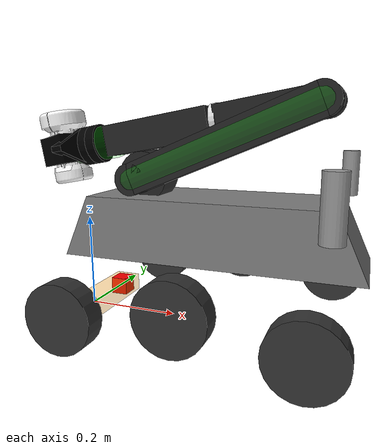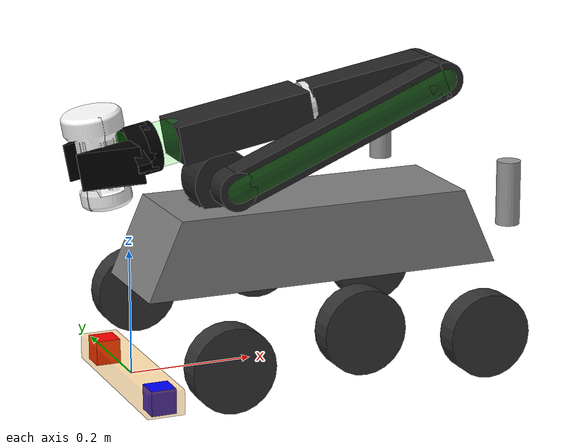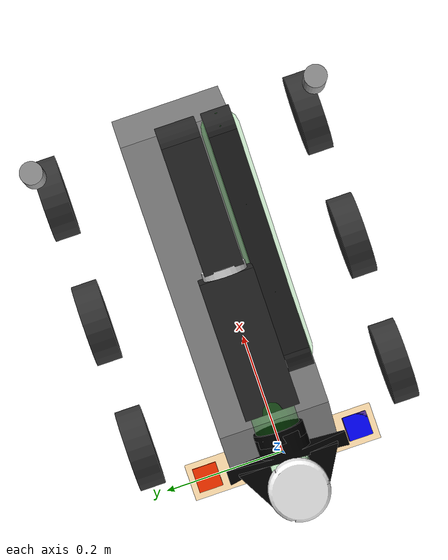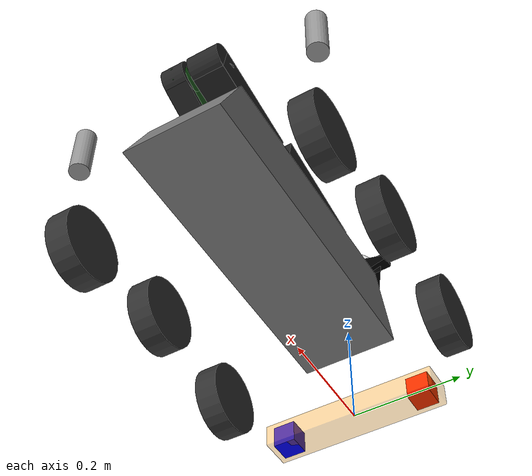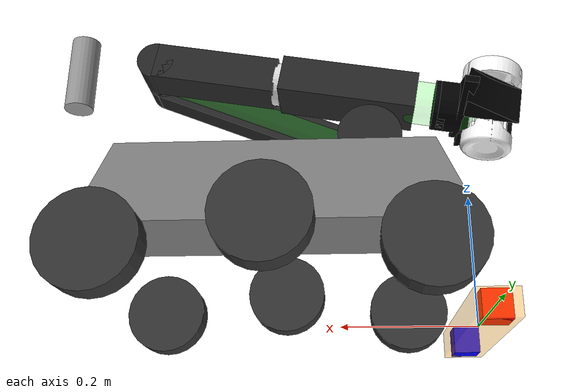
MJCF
<mujoco model="RM2026Arm">
  <compiler angle="radian" coordinate="local"/>

  <option gravity="0 0 -9.81"/>
  <option integrator="implicitfast" timestep="0.001"/>

  <asset>
    <material name="blue" rgba="0.2 0.6 0.8 1"/>
    <material name="grey" rgba="0.7 0.7 0.7 1"/>

    <mesh name="chassisbody" file="model/chassis/chassisbody.obj"/>
    <mesh name="energy_unit" file="model/field_assets/Energy_Unit.STL" />
    <mesh name="gripper_left" file="model/arm/gripper_asset/gripper_left.obj" scale="0.001 0.001 0.001"/>
    <mesh name="gripper_right" file="model/arm/gripper_asset/gripper_right.obj" scale="0.001 0.001 0.001"/>
    <mesh name="gripper_base" file="model/arm/gripper_asset/gripper_base.obj" scale="0.001 0.001 0.001"/>

  </asset>

  <worldbody>
    <light directional="true" diffuse=".8 .8 .8" specular=".2 .2 .2" pos="0 0 0" dir="0 0 -1"/>
  <body name="parallel_camera_mount" mocap="true">
    <geom name="parallel_camera_mount_geom" type="box" size="0.03 0.16 0.02"
          rgba="1 0.6 0 0.35" contype="0" conaffinity="0" mass="0"/>
    <body name="second_camera_left_mount" pos="0 0.13 0">
      <body name="second_camera_left_link">
        <joint name="second_camera_left_yaw" type="hinge" axis="0 0 -1" limited="false"/>
        <joint name="second_camera_left_pitch" type="hinge" axis="0 -1 0" limited="false"/>
        <geom name="camera_left_geom" type="box" size="0.02 0.02 0.02"
              rgba="1 0 0 1" contype="0" conaffinity="0" mass="0.001"/>
        <!-- Match square debug camera output: 640x640 with horizontal FOV 60deg -> vertical FOV 60deg. -->
        <camera name="second_camera" pos="0 0 0" quat="0.5 0.5 -0.5 -0.5" fovy="60"/>
      </body>
    </body>
    <body name="second_camera_right_mount" pos="0 -0.13 0">
      <body name="second_camera_right_link">
        <joint name="second_camera_right_yaw" type="hinge" axis="0 0 -1" limited="false"/>
        <joint name="second_camera_right_pitch" type="hinge" axis="0 -1 0" limited="false"/>
        <geom name="camera_right_geom" type="box" size="0.02 0.02 0.02"
              rgba="0 0 1 1" contype="0" conaffinity="0" mass="0.001"/>
        <camera name="second_camera2" pos="0 0 0" quat="0.5 0.5 -0.5 -0.5" fovy="60"/>
      </body>
    </body>
  </body>
  <body name="chassis" pos="0.15 0.0 0.3">
    <geom name="chassis_geom" type="mesh" mesh="chassisbody" pos="0.146 0 -0.16" rgba="0.5 0.5 0.5 1" mass="10"/>
    <!-- 轮子: 直径134mm, 宽42mm, 两侧轮心距435mm, 前后轴距428mm -->
    <geom name="wheel_fl" type="cylinder" size="0.067 0.021" pos="-0.068 -0.2175 -0.233" euler="1.5708 0 0" rgba="0.2 0.2 0.2 1" mass="0.5"/>
    <geom name="wheel_fr" type="cylinder" size="0.067 0.021" pos="-0.068 0.2175 -0.233" euler="1.5708 0 0" rgba="0.2 0.2 0.2 1" mass="0.5"/>
    <geom name="wheel_rl" type="cylinder" size="0.067 0.021" pos="0.360 -0.2175 -0.233" euler="1.5708 0 0" rgba="0.2 0.2 0.2 1" mass="0.5"/>
    <geom name="wheel_rr" type="cylinder" size="0.067 0.021" pos="0.360 0.2175 -0.233" euler="1.5708 0 0" rgba="0.2 0.2 0.2 1" mass="0.5"/>
    <!-- 中间悬空轮 -->
    <geom name="wheel_ml" type="cylinder" size="0.067 0.021" pos="0.146 -0.2175 -0.20" euler="1.5708 0 0" rgba="0.2 0.2 0.2 1" mass="0.5"/>
    <geom name="wheel_mr" type="cylinder" size="0.067 0.021" pos="0.146 0.2175 -0.20" euler="1.5708 0 0" rgba="0.2 0.2 0.2 1" mass="0.5"/>
    <!-- 臂座立柱：joint1坐标系下 (-388,±232,-4.25) mm → chassis坐标系，φ37×H100 mm -->
    <geom name="pillar_l" type="cylinder" size="0.0185 0.05" pos="0.388  0.232 -0.00425" rgba="0.6 0.6 0.6 1" mass="0.01"/>
    <geom name="pillar_r" type="cylinder" size="0.0185 0.05" pos="0.388 -0.232 -0.00425" rgba="0.6 0.6 0.6 1" mass="0.01"/>
    <joint name="chassis_x" type="slide" axis="1 0 0" range="-3 3" limited="false"/>
    <joint name="chassis_y" type="slide" axis="0 1 0" range="-3 3" limited="false"/>
    <joint name="chassis_yaw" type="hinge" axis="0 0 1" limited="false"/>

    <body name="link1" pos="0 0 0" euler="0 0 3.14159">
      <joint name="joint1" type="hinge" axis="0 0 1" range="-3.141592653589793 3.141592653589793" limited="true"/>
        <geom name="link1_geom1" type="box" size="0.04 0.0315 0.015" pos="0 0 -.051" rgba="0.149 0.149 0.149 1" mass="0.741" />
        <geom name="link1_geom2" type="cylinder" size="0.051 0.0315" pos="0 0 0" euler="1.5708 0 0" rgba="0.149 0.149 0.149 1" mass="0.351"/>

        <body name="link2" pos="0 0 0" euler="-1.5708 0 -2.7525588">
         <joint name="joint2" type="hinge" axis="0 0 1" range="0 2.2083" limited="true" />
            <!-- DH-aligned helper capsules for planning/debug; not tied to MuJoCo body semantics -->
            <geom name="cc_seg23" type="capsule" fromto="0 0 0.0643  0.38 0 0.0643"
                  size="0.03" rgba="0 1 0 0.10" contype="0" conaffinity="0" mass="0"/>
            <geom name="link2_geom1" type="cylinder" size="0.031 0.0225" pos="0 0 0.0643" euler="0 0 0" rgba="0.149 0.149 0.149 1"  mass="0.2"/>
            <geom name="link2_geom2" type="box" size="0.19 0.03 0.0225" pos="0.19 0 0.0643" rgba="0.149 0.149 0.149 1" mass="0.62"/>
            <geom name="link2_geom3" type="cylinder" size="0.03 0.0225" pos="0.38 0 0.0643" euler="0 0 0" rgba="0.149 0.149 0.149 1" mass="0.2"/>

            <body name="link3" pos="0.38 0 0" euler="-3.14159 0 1.7870426">
             <joint name="joint3" type="hinge" axis="0 0 1" range="0 2.3126" limited="true" />
                <geom name="cc_seg34" type="capsule" fromto="0 0 0  0 0.4345 0"
                      size="0.03" rgba="0 1 0 0.10" contype="0" conaffinity="0" mass="0"/>
                <geom name="link3_geom1" type="cylinder" size="0.0305 0.0313" pos="0 0 0" euler="0 0 0" rgba="0.149 0.149 0.149 1" mass="0.9"/>
                <geom name="link3_geom2" type="box" size="0.0305 0.102 0.0313" pos="0.0 0.102 0" euler="0 0 0" rgba="0.149 0.149 0.149 1" mass="0.8"/>
                <camera name="main_camera" pos="-0.02 0.03 0" quat="0.5 0.5 -0.5 0.5" fovy="80"/>
                    <body name="link4" pos="0 0.4345 0" euler="-1.5708 0 3.14159" >
                    <joint name="joint4" type="hinge" axis="0 0 1" limited="false"/>
                    <geom name="link4_geom1" type="box" size="0.0305  0.0433 0.1105" pos="0 0 -0.1105" euler="0 0 0" rgba="0.149 0.149 0.149 1" mass="1.2"/>
                    <geom name="link4_geom2" type="cylinder" size="0.035 0.006" pos="0 0 -0.227" euler="0 0 1.57" rgba="0.878 0.878 0.878 1" mass=".3"/>
                        <body name="link5" pos="0 0 0" euler="1.5708 0 0">
                        <joint name="joint5" type="hinge" axis="0 0 1"  range="-1.8326 1.8326" limited="true"/>
                        <geom name="link5_geom1" type="cylinder" size="0.0205 0.0025" pos="0 0 0.0458" euler="0 0 0" rgba="0.3 0.3 0.3 0" mass="0.3"/>
                        <geom name="link5_geom2" type="cylinder" size="0.0205 0.0025" pos="0 0 -0.0458" euler="0 0 0" rgba="0.3 0.3 0.3 0" mass="0.3"/>
                            <body name="link6" pos="0 0 0" euler="-1.5708 0 0">
                            <joint name="joint6" type="hinge" axis="0 0 1" limited="false"/>
                            <inertial pos="0 0 0.072" mass="1.0" diaginertia="0.005 0.005 0.005"/>

                            <geom name="cc_wrist_tcp" type="capsule" fromto="0 0 0  0 0 0.10"
                                  size="0.035" rgba="0 1 0 0.10" contype="0" conaffinity="0" mass="0"/>
                            <geom name="link6_geom2" type="cylinder" size="0.04 0.01" pos= "0 0 0.04" euler="0 0 0" rgba="0 0 0 1" mass="0.001"/>
                            <geom name="gripper_base" type="mesh" mesh="gripper_base" pos="0 0 0.077" euler="1.5708 0 0" rgba="0 0 0 1" mass="0.5" />
                              <body name="gripper" pos="0 0 0.077">
                                <geom name="gripper_left" type="mesh" mesh="gripper_left" pos="0 -0.03 0" euler="1.5708 0 0" rgba="0 0 0 1" mass="0.15"/>
                              </body>
                              <body name="gripper_left_body" pos="0 0 0.077">
                                <geom name="gripper_right" type="mesh" mesh="gripper_right" pos="0 0.03 0" euler="1.5708 0 0" rgba="0 0 0 1" mass="0.15"/>
                              </body>
                              <body name="energy_unit">
                                <geom name="energy_unit" type="mesh" mesh="energy_unit" pos="-0.07 0 0.12" euler="0 1.5708 0" rgba="1 1 1 1" mass="0.01"/>
                              </body>
                            </body>
                        </body>
                    </body>

            </body>
        </body>
    </body>
  </body>
  </worldbody>
  <equality>
  </equality>

  <actuator>
  <motor name="motor_joint1" joint="joint1" gear="1"/>
  <motor name="motor_joint2" joint="joint2" gear="1"/>
  <motor name="motor_joint3" joint="joint3" gear="1"/>
  <motor name="motor_joint4" joint="joint4" gear="1"/>
  <motor name="motor_joint5" joint="joint5" gear="1"/>
  <motor name="motor_joint6" joint="joint6" gear="1"/>
  <position name="chassis_x" joint="chassis_x" kp="1000" kv="200" gear="1" ctrllimited="false"/>
  <position name="chassis_y" joint="chassis_y" kp="1000" kv="200" gear="1" ctrllimited="false"/>
  <position name="chassis_yaw" joint="chassis_yaw" kp="1000" kv="200" gear="1" ctrllimited="false"/>
<position name="cam_left_yaw" joint="second_camera_left_yaw" kp="10" kv="2" gear="1"/>
<position name="cam_left_pitch" joint="second_camera_left_pitch" kp="10" kv="2" gear="1"/>
<position name="cam_right_yaw" joint="second_camera_right_yaw" kp="10" kv="2" gear="1"/>
<position name="cam_right_pitch" joint="second_camera_right_pitch" kp="10" kv="2" gear="1"/>

  <general name="j1" joint="joint1" gear="0"/>
  <general name="j2" joint="joint2" gear="0"/>
  <general name="j3" joint="joint3" gear="0"/>
  <general name="j4" joint="joint4" gear="0"/>
  <general name="j5" joint="joint5" gear="0"/>
  <general name="j6" joint="joint6" gear="0"/>

  </actuator>
</mujoco>
